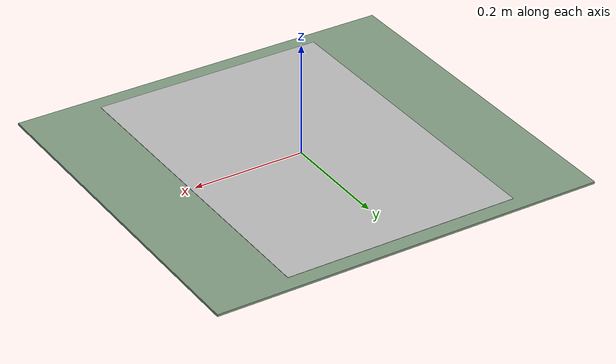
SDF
<?xml version="1.0" ?>
<sdf version="1.4">
  <model name="flat_chessboard">
    <static>0</static>
    <link name="link">

      <inertial>
        <mass>0.05</mass>
        <inertia>
          <ixx>0.000015</ixx>
          <ixy>0.0</ixy>
          <ixz>0.0</ixz>
          <iyy>0.000015</iyy>
          <iyz>0.0</iyz>
          <izz>0.0000108</izz>
        </inertia>
      </inertial>

      <collision name="collision">
        <pose>0 0 0 0 0 0</pose>
          <geometry>
            <box>
              <size>0.70 0.57 0.0039</size>
            </box>
          </geometry>
        <surface>
          <friction>
            <ode>
              <mu>30.0</mu>
              <mu2>30.0</mu2>
              <fdir1>0 0 0</fdir1>
            </ode>
          </friction>
          <contact>
            <ode>
              <kp>1000000.0</kp>
              <kd>100.0</kd>
              <min_depth>0.0025</min_depth>
              <max_vel>1.0</max_vel>
            </ode>
          </contact>
        </surface>
      </collision>

      <visual name="chessboard support">
         <pose>0 0 0 0 0 0</pose>
         <geometry>
            <box>
              <size>0.70 0.65 0.0039</size>
            </box>
          </geometry>
          <material>
            <ambient>0.5 0.6 0.5 1</ambient>
            <diffuse>0.5 0.6 0.5 1</diffuse>
            <specular>0.1 0.1 0.1 1</specular>
            <emissive>0 0 0 0</emissive>
          </material>
      </visual>

      <velocity_decay>
        <linear>0.000000</linear>
        <angular>0.000000</angular>
      </velocity_decay>
      <self_collide>0</self_collide>
      <kinematic>0</kinematic>
      <gravity>1</gravity>
    </link>

    <link name="plane">

      <inertial>
        <mass>0.05</mass>
        <inertia>
          <ixx>0.000015</ixx>
          <ixy>0.0</ixy>
          <ixz>0.0</ixz>
          <iyy>0.000015</iyy>
          <iyz>0.0</iyz>
          <izz>0.0000108</izz>
        </inertia>
      </inertial>

      <collision name="collision">
        <pose>0 0 0.0 0 0 0</pose>
          <geometry>
            <box>
              <size>0.594 0.420 0.001</size>
            </box>
          </geometry>
        <surface>
          <friction>
            <ode>
              <mu>30.0</mu>
              <mu2>30.0</mu2>
              <fdir1>0 0 0</fdir1>
            </ode>
          </friction>
          <contact>
            <ode>
              <kp>1000000.0</kp>
              <kd>100.0</kd>
              <min_depth>0.0025</min_depth>
              <max_vel>1.0</max_vel>
            </ode>
          </contact>
        </surface>
      </collision>

      <visual name="printed chessboard">
        <pose>0.0 0.0 0.0 0.0 0.0 1.570796327</pose>
        <geometry>
          <mesh>
             <uri>model://flat_chessboard/meshes/flat_chessboard.dae</uri>
    	    </mesh>
        </geometry>
      </visual>

      <velocity_decay>
        <linear>0.000000</linear>
        <angular>0.000000</angular>
      </velocity_decay>
      <self_collide>0</self_collide>
      <kinematic>0</kinematic>
      <gravity>1</gravity>
    </link>

  </model>
</sdf>
